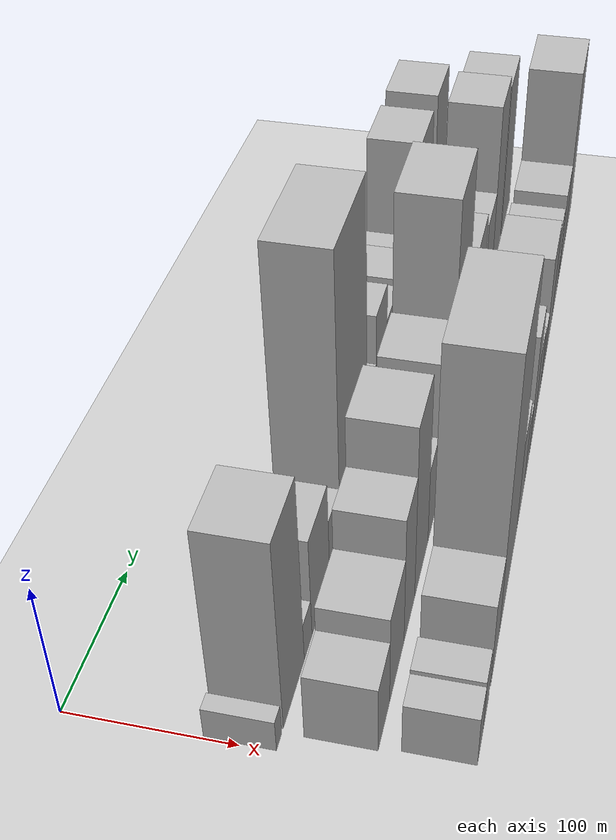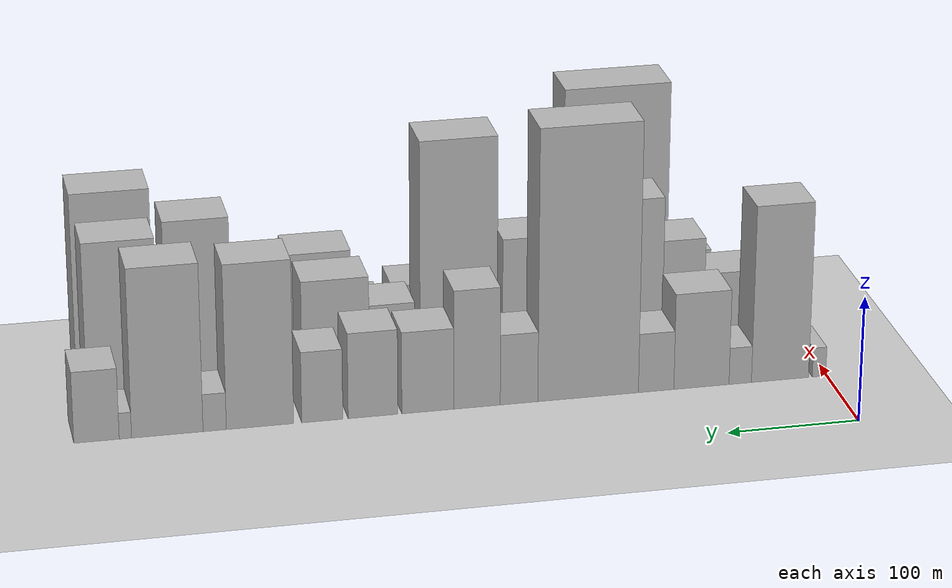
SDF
<sdf version="1.6">
 <world name="default">
  <include>
   <name>ground_plane_2</name>
   <uri>model://HANNAS_ground_plane</uri>
   <pose>100 0 0  0 0 0</pose>
  </include>
  <model name="building_16">
   <static>1</static>
   <pose>100.0000 6.3810 0 0.000000 0.000000 0.000000</pose>
   <link name="link">
    <pose>0 0 12.00 0 0 0</pose>
    <collision name="collision"><geometry><box><size>40.0000 10.6311 24.0000</size></box></geometry></collision>
    <visual name="visual">
     <cast_shadows>0</cast_shadows>
     <geometry><box><size>40.0000 10.6311 24.0000</size></box></geometry>
     <material>
      <script>
       <uri>model://HANNAS_wall/materials/scripts</uri>
       <uri>model://HANNAS_wall/materials/textures</uri>
       <name>vrc/HANNAS_wall</name>
      </script>
     </material>
    </visual>
   </link>
  </model>
  <model name="building_17">
   <static>1</static>
   <pose>100.0000 37.1451 0 0.000000 0.000000 0.000000</pose>
   <link name="link">
    <pose>0 0 72.00 0 0 0</pose>
    <collision name="collision"><geometry><box><size>40.0000 44.8969 144.0000</size></box></geometry></collision>
    <visual name="visual">
     <cast_shadows>0</cast_shadows>
     <geometry><box><size>40.0000 44.8969 144.0000</size></box></geometry>
     <material>
      <script>
       <uri>model://HANNAS_wall/materials/scripts</uri>
       <uri>model://HANNAS_wall/materials/textures</uri>
       <name>vrc/HANNAS_wall</name>
      </script>
     </material>
    </visual>
   </link>
  </model>
  <model name="building_18">
   <static>1</static>
   <pose>100.0000 68.3640 0 0.000000 0.000000 0.000000</pose>
   <link name="link">
    <pose>0 0 15.00 0 0 0</pose>
    <collision name="collision"><geometry><box><size>40.0000 17.5411 30.0000</size></box></geometry></collision>
    <visual name="visual">
     <cast_shadows>0</cast_shadows>
     <geometry><box><size>40.0000 17.5411 30.0000</size></box></geometry>
     <material>
      <script>
       <uri>model://HANNAS_wall/materials/scripts</uri>
       <uri>model://HANNAS_wall/materials/textures</uri>
       <name>vrc/HANNAS_wall</name>
      </script>
     </material>
    </visual>
   </link>
  </model>
  <model name="building_19">
   <static>1</static>
   <pose>100.0000 98.6439 0 0.000000 0.000000 0.000000</pose>
   <link name="link">
    <pose>0 0 39.00 0 0 0</pose>
    <collision name="collision"><geometry><box><size>40.0000 43.0187 78.0000</size></box></geometry></collision>
    <visual name="visual">
     <cast_shadows>0</cast_shadows>
     <geometry><box><size>40.0000 43.0187 78.0000</size></box></geometry>
     <material>
      <script>
       <uri>model://HANNAS_wall/materials/scripts</uri>
       <uri>model://HANNAS_wall/materials/textures</uri>
       <name>vrc/HANNAS_wall</name>
      </script>
     </material>
    </visual>
   </link>
  </model>
  <model name="building_20">
   <static>1</static>
   <pose>100.0000 133.8845 0 0.000000 0.000000 0.000000</pose>
   <link name="link">
    <pose>0 0 24.00 0 0 0</pose>
    <collision name="collision"><geometry><box><size>40.0000 27.4626 48.0000</size></box></geometry></collision>
    <visual name="visual">
     <cast_shadows>0</cast_shadows>
     <geometry><box><size>40.0000 27.4626 48.0000</size></box></geometry>
     <material>
      <script>
       <uri>model://HANNAS_wall/materials/scripts</uri>
       <uri>model://HANNAS_wall/materials/textures</uri>
       <name>vrc/HANNAS_wall</name>
      </script>
     </material>
    </visual>
   </link>
  </model>
  <model name="building_21">
   <static>1</static>
   <pose>100.0000 186.3772 0 0.000000 0.000000 0.000000</pose>
   <link name="link">
    <pose>0 0 109.50 0 0 0</pose>
    <collision name="collision"><geometry><box><size>40.0000 77.5228 219.0000</size></box></geometry></collision>
    <visual name="visual">
     <cast_shadows>0</cast_shadows>
     <geometry><box><size>40.0000 77.5228 219.0000</size></box></geometry>
     <material>
      <script>
       <uri>model://HANNAS_wall/materials/scripts</uri>
       <uri>model://HANNAS_wall/materials/textures</uri>
       <name>vrc/HANNAS_wall</name>
      </script>
     </material>
    </visual>
   </link>
  </model>
  <model name="building_22">
   <static>1</static>
   <pose>100.0000 239.5046 0 0.000000 0.000000 0.000000</pose>
   <link name="link">
    <pose>0 0 28.50 0 0 0</pose>
    <collision name="collision"><geometry><box><size>40.0000 28.7320 57.0000</size></box></geometry></collision>
    <visual name="visual">
     <cast_shadows>0</cast_shadows>
     <geometry><box><size>40.0000 28.7320 57.0000</size></box></geometry>
     <material>
      <script>
       <uri>model://HANNAS_wall/materials/scripts</uri>
       <uri>model://HANNAS_wall/materials/textures</uri>
       <name>vrc/HANNAS_wall</name>
      </script>
     </material>
    </visual>
   </link>
  </model>
  <model name="building_23">
   <static>1</static>
   <pose>100.0000 271.5599 0 0.000000 0.000000 0.000000</pose>
   <link name="link">
    <pose>0 0 48.00 0 0 0</pose>
    <collision name="collision"><geometry><box><size>40.0000 35.3786 96.0000</size></box></geometry></collision>
    <visual name="visual">
     <cast_shadows>0</cast_shadows>
     <geometry><box><size>40.0000 35.3786 96.0000</size></box></geometry>
     <material>
      <script>
       <uri>model://HANNAS_wall/materials/scripts</uri>
       <uri>model://HANNAS_wall/materials/textures</uri>
       <name>vrc/HANNAS_wall</name>
      </script>
     </material>
    </visual>
   </link>
  </model>
  <model name="building_24">
   <static>1</static>
   <pose>100.0000 308.8940 0 0.000000 0.000000 0.000000</pose>
   <link name="link">
    <pose>0 0 33.00 0 0 0</pose>
    <collision name="collision"><geometry><box><size>40.0000 39.2897 66.0000</size></box></geometry></collision>
    <visual name="visual">
     <cast_shadows>0</cast_shadows>
     <geometry><box><size>40.0000 39.2897 66.0000</size></box></geometry>
     <material>
      <script>
       <uri>model://HANNAS_wall/materials/scripts</uri>
       <uri>model://HANNAS_wall/materials/textures</uri>
       <name>vrc/HANNAS_wall</name>
      </script>
     </material>
    </visual>
   </link>
  </model>
  <model name="building_25">
   <static>1</static>
   <pose>100.0000 350.2658 0 0.000000 0.000000 0.000000</pose>
   <link name="link">
    <pose>0 0 34.50 0 0 0</pose>
    <collision name="collision"><geometry><box><size>40.0000 37.4539 69.0000</size></box></geometry></collision>
    <visual name="visual">
     <cast_shadows>0</cast_shadows>
     <geometry><box><size>40.0000 37.4539 69.0000</size></box></geometry>
     <material>
      <script>
       <uri>model://HANNAS_wall/materials/scripts</uri>
       <uri>model://HANNAS_wall/materials/textures</uri>
       <name>vrc/HANNAS_wall</name>
      </script>
     </material>
    </visual>
   </link>
  </model>
  <model name="building_26">
   <static>1</static>
   <pose>100.0000 388.3803 0 0.000000 0.000000 0.000000</pose>
   <link name="link">
    <pose>0 0 28.50 0 0 0</pose>
    <collision name="collision"><geometry><box><size>40.0000 30.7751 57.0000</size></box></geometry></collision>
    <visual name="visual">
     <cast_shadows>0</cast_shadows>
     <geometry><box><size>40.0000 30.7751 57.0000</size></box></geometry>
     <material>
      <script>
       <uri>model://HANNAS_wall/materials/scripts</uri>
       <uri>model://HANNAS_wall/materials/textures</uri>
       <name>vrc/HANNAS_wall</name>
      </script>
     </material>
    </visual>
   </link>
  </model>
  <model name="building_27">
   <static>1</static>
   <pose>100.0000 434.8495 0 0.000000 0.000000 0.000000</pose>
   <link name="link">
    <pose>0 0 66.00 0 0 0</pose>
    <collision name="collision"><geometry><box><size>40.0000 50.1632 132.0000</size></box></geometry></collision>
    <visual name="visual">
     <cast_shadows>0</cast_shadows>
     <geometry><box><size>40.0000 50.1632 132.0000</size></box></geometry>
     <material>
      <script>
       <uri>model://HANNAS_wall/materials/scripts</uri>
       <uri>model://HANNAS_wall/materials/textures</uri>
       <name>vrc/HANNAS_wall</name>
      </script>
     </material>
    </visual>
   </link>
  </model>
  <model name="building_28">
   <static>1</static>
   <pose>100.0000 468.5543 0 0.000000 0.000000 0.000000</pose>
   <link name="link">
    <pose>0 0 15.00 0 0 0</pose>
    <collision name="collision"><geometry><box><size>40.0000 17.2466 30.0000</size></box></geometry></collision>
    <visual name="visual">
     <cast_shadows>0</cast_shadows>
     <geometry><box><size>40.0000 17.2466 30.0000</size></box></geometry>
     <material>
      <script>
       <uri>model://HANNAS_wall/materials/scripts</uri>
       <uri>model://HANNAS_wall/materials/textures</uri>
       <name>vrc/HANNAS_wall</name>
      </script>
     </material>
    </visual>
   </link>
  </model>
  <model name="building_29">
   <static>1</static>
   <pose>100.0000 503.5258 0 0.000000 0.000000 0.000000</pose>
   <link name="link">
    <pose>0 0 67.50 0 0 0</pose>
    <collision name="collision"><geometry><box><size>40.0000 52.6964 135.0000</size></box></geometry></collision>
    <visual name="visual">
     <cast_shadows>0</cast_shadows>
     <geometry><box><size>40.0000 52.6964 135.0000</size></box></geometry>
     <material>
      <script>
       <uri>model://HANNAS_wall/materials/scripts</uri>
       <uri>model://HANNAS_wall/materials/textures</uri>
       <name>vrc/HANNAS_wall</name>
      </script>
     </material>
    </visual>
   </link>
  </model>
  <model name="building_30">
   <static>1</static>
   <pose>100.0000 534.3964 0 0.000000 0.000000 0.000000</pose>
   <link name="link">
    <pose>0 0 10.50 0 0 0</pose>
    <collision name="collision"><geometry><box><size>40.0000 9.0448 21.0000</size></box></geometry></collision>
    <visual name="visual">
     <cast_shadows>0</cast_shadows>
     <geometry><box><size>40.0000 9.0448 21.0000</size></box></geometry>
     <material>
      <script>
       <uri>model://HANNAS_wall/materials/scripts</uri>
       <uri>model://HANNAS_wall/materials/textures</uri>
       <name>vrc/HANNAS_wall</name>
      </script>
     </material>
    </visual>
   </link>
  </model>
  <model name="building_31">
   <static>1</static>
   <pose>100.0000 555.5444 0 0.000000 0.000000 0.000000</pose>
   <link name="link">
    <pose>0 0 28.50 0 0 0</pose>
    <collision name="collision"><geometry><box><size>40.0000 33.2512 57.0000</size></box></geometry></collision>
    <visual name="visual">
     <cast_shadows>0</cast_shadows>
     <geometry><box><size>40.0000 33.2512 57.0000</size></box></geometry>
     <material>
      <script>
       <uri>model://HANNAS_wall/materials/scripts</uri>
       <uri>model://HANNAS_wall/materials/textures</uri>
       <name>vrc/HANNAS_wall</name>
      </script>
     </material>
    </visual>
   </link>
  </model>
  <model name="building_46">
   <static>1</static>
   <pose>152.0000 27.1934 0 0.000000 0.000000 0.000000</pose>
   <link name="link">
    <pose>0 0 25.50 0 0 0</pose>
    <collision name="collision"><geometry><box><size>40.0000 30.2370 51.0000</size></box></geometry></collision>
    <visual name="visual">
     <cast_shadows>0</cast_shadows>
     <geometry><box><size>40.0000 30.2370 51.0000</size></box></geometry>
     <material>
      <script>
       <uri>model://HANNAS_wall/materials/scripts</uri>
       <uri>model://HANNAS_wall/materials/textures</uri>
       <name>vrc/HANNAS_wall</name>
      </script>
     </material>
    </visual>
   </link>
  </model>
  <model name="building_47">
   <static>1</static>
   <pose>152.0000 62.8523 0 0.000000 0.000000 0.000000</pose>
   <link name="link">
    <pose>0 0 34.50 0 0 0</pose>
    <collision name="collision"><geometry><box><size>40.0000 41.0806 69.0000</size></box></geometry></collision>
    <visual name="visual">
     <cast_shadows>0</cast_shadows>
     <geometry><box><size>40.0000 41.0806 69.0000</size></box></geometry>
     <material>
      <script>
       <uri>model://HANNAS_wall/materials/scripts</uri>
       <uri>model://HANNAS_wall/materials/textures</uri>
       <name>vrc/HANNAS_wall</name>
      </script>
     </material>
    </visual>
   </link>
  </model>
  <model name="building_48">
   <static>1</static>
   <pose>152.0000 99.8053 0 0.000000 0.000000 0.000000</pose>
   <link name="link">
    <pose>0 0 49.50 0 0 0</pose>
    <collision name="collision"><geometry><box><size>40.0000 32.8254 99.0000</size></box></geometry></collision>
    <visual name="visual">
     <cast_shadows>0</cast_shadows>
     <geometry><box><size>40.0000 32.8254 99.0000</size></box></geometry>
     <material>
      <script>
       <uri>model://HANNAS_wall/materials/scripts</uri>
       <uri>model://HANNAS_wall/materials/textures</uri>
       <name>vrc/HANNAS_wall</name>
      </script>
     </material>
    </visual>
   </link>
  </model>
  <model name="building_49">
   <static>1</static>
   <pose>152.0000 138.2980 0 0.000000 0.000000 0.000000</pose>
   <link name="link">
    <pose>0 0 67.50 0 0 0</pose>
    <collision name="collision"><geometry><box><size>40.0000 44.1601 135.0000</size></box></geometry></collision>
    <visual name="visual">
     <cast_shadows>0</cast_shadows>
     <geometry><box><size>40.0000 44.1601 135.0000</size></box></geometry>
     <material>
      <script>
       <uri>model://HANNAS_wall/materials/scripts</uri>
       <uri>model://HANNAS_wall/materials/textures</uri>
       <name>vrc/HANNAS_wall</name>
      </script>
     </material>
    </visual>
   </link>
  </model>
  <model name="building_50">
   <static>1</static>
   <pose>152.0000 175.4319 0 0.000000 0.000000 0.000000</pose>
   <link name="link">
    <pose>0 0 30.00 0 0 0</pose>
    <collision name="collision"><geometry><box><size>40.0000 30.1077 60.0000</size></box></geometry></collision>
    <visual name="visual">
     <cast_shadows>0</cast_shadows>
     <geometry><box><size>40.0000 30.1077 60.0000</size></box></geometry>
     <material>
      <script>
       <uri>model://HANNAS_wall/materials/scripts</uri>
       <uri>model://HANNAS_wall/materials/textures</uri>
       <name>vrc/HANNAS_wall</name>
      </script>
     </material>
    </visual>
   </link>
  </model>
  <model name="building_51">
   <static>1</static>
   <pose>152.0000 219.2531 0 0.000000 0.000000 0.000000</pose>
   <link name="link">
    <pose>0 0 55.50 0 0 0</pose>
    <collision name="collision"><geometry><box><size>40.0000 43.5346 111.0000</size></box></geometry></collision>
    <visual name="visual">
     <cast_shadows>0</cast_shadows>
     <geometry><box><size>40.0000 43.5346 111.0000</size></box></geometry>
     <material>
      <script>
       <uri>model://HANNAS_wall/materials/scripts</uri>
       <uri>model://HANNAS_wall/materials/textures</uri>
       <name>vrc/HANNAS_wall</name>
      </script>
     </material>
    </visual>
   </link>
  </model>
  <model name="building_52">
   <static>1</static>
   <pose>152.0000 274.7433 0 0.000000 0.000000 0.000000</pose>
   <link name="link">
    <pose>0 0 97.50 0 0 0</pose>
    <collision name="collision"><geometry><box><size>40.0000 59.4459 195.0000</size></box></geometry></collision>
    <visual name="visual">
     <cast_shadows>0</cast_shadows>
     <geometry><box><size>40.0000 59.4459 195.0000</size></box></geometry>
     <material>
      <script>
       <uri>model://HANNAS_wall/materials/scripts</uri>
       <uri>model://HANNAS_wall/materials/textures</uri>
       <name>vrc/HANNAS_wall</name>
      </script>
     </material>
    </visual>
   </link>
  </model>
  <model name="building_53">
   <static>1</static>
   <pose>152.0000 325.9357 0 0.000000 0.000000 0.000000</pose>
   <link name="link">
    <pose>0 0 33.00 0 0 0</pose>
    <collision name="collision"><geometry><box><size>40.0000 34.9389 66.0000</size></box></geometry></collision>
    <visual name="visual">
     <cast_shadows>0</cast_shadows>
     <geometry><box><size>40.0000 34.9389 66.0000</size></box></geometry>
     <material>
      <script>
       <uri>model://HANNAS_wall/materials/scripts</uri>
       <uri>model://HANNAS_wall/materials/textures</uri>
       <name>vrc/HANNAS_wall</name>
      </script>
     </material>
    </visual>
   </link>
  </model>
  <model name="building_54">
   <static>1</static>
   <pose>152.0000 369.0402 0 0.000000 0.000000 0.000000</pose>
   <link name="link">
    <pose>0 0 45.00 0 0 0</pose>
    <collision name="collision"><geometry><box><size>40.0000 51.2701 90.0000</size></box></geometry></collision>
    <visual name="visual">
     <cast_shadows>0</cast_shadows>
     <geometry><box><size>40.0000 51.2701 90.0000</size></box></geometry>
     <material>
      <script>
       <uri>model://HANNAS_wall/materials/scripts</uri>
       <uri>model://HANNAS_wall/materials/textures</uri>
       <name>vrc/HANNAS_wall</name>
      </script>
     </material>
    </visual>
   </link>
  </model>
  <model name="building_55">
   <static>1</static>
   <pose>152.0000 399.0772 0 0.000000 0.000000 0.000000</pose>
   <link name="link">
    <pose>0 0 10.50 0 0 0</pose>
    <collision name="collision"><geometry><box><size>40.0000 8.8040 21.0000</size></box></geometry></collision>
    <visual name="visual">
     <cast_shadows>0</cast_shadows>
     <geometry><box><size>40.0000 8.8040 21.0000</size></box></geometry>
     <material>
      <script>
       <uri>model://HANNAS_wall/materials/scripts</uri>
       <uri>model://HANNAS_wall/materials/textures</uri>
       <name>vrc/HANNAS_wall</name>
      </script>
     </material>
    </visual>
   </link>
  </model>
  <model name="building_56">
   <static>1</static>
   <pose>152.0000 425.3947 0 0.000000 0.000000 0.000000</pose>
   <link name="link">
    <pose>0 0 37.50 0 0 0</pose>
    <collision name="collision"><geometry><box><size>40.0000 43.8309 75.0000</size></box></geometry></collision>
    <visual name="visual">
     <cast_shadows>0</cast_shadows>
     <geometry><box><size>40.0000 43.8309 75.0000</size></box></geometry>
     <material>
      <script>
       <uri>model://HANNAS_wall/materials/scripts</uri>
       <uri>model://HANNAS_wall/materials/textures</uri>
       <name>vrc/HANNAS_wall</name>
      </script>
     </material>
    </visual>
   </link>
  </model>
  <model name="building_57">
   <static>1</static>
   <pose>152.0000 471.9202 0 0.000000 0.000000 0.000000</pose>
   <link name="link">
    <pose>0 0 73.50 0 0 0</pose>
    <collision name="collision"><geometry><box><size>40.0000 49.2201 147.0000</size></box></geometry></collision>
    <visual name="visual">
     <cast_shadows>0</cast_shadows>
     <geometry><box><size>40.0000 49.2201 147.0000</size></box></geometry>
     <material>
      <script>
       <uri>model://HANNAS_wall/materials/scripts</uri>
       <uri>model://HANNAS_wall/materials/textures</uri>
       <name>vrc/HANNAS_wall</name>
      </script>
     </material>
    </visual>
   </link>
  </model>
  <model name="building_58">
   <static>1</static>
   <pose>152.0000 529.4908 0 0.000000 0.000000 0.000000</pose>
   <link name="link">
    <pose>0 0 67.50 0 0 0</pose>
    <collision name="collision"><geometry><box><size>40.0000 53.9211 135.0000</size></box></geometry></collision>
    <visual name="visual">
     <cast_shadows>0</cast_shadows>
     <geometry><box><size>40.0000 53.9211 135.0000</size></box></geometry>
     <material>
      <script>
       <uri>model://HANNAS_wall/materials/scripts</uri>
       <uri>model://HANNAS_wall/materials/textures</uri>
       <name>vrc/HANNAS_wall</name>
      </script>
     </material>
    </visual>
   </link>
  </model>
  <model name="building_74">
   <static>1</static>
   <pose>204.0000 24.5260 0 0.000000 0.000000 0.000000</pose>
   <link name="link">
    <pose>0 0 19.50 0 0 0</pose>
    <collision name="collision"><geometry><box><size>40.0000 20.3262 39.0000</size></box></geometry></collision>
    <visual name="visual">
     <cast_shadows>0</cast_shadows>
     <geometry><box><size>40.0000 20.3262 39.0000</size></box></geometry>
     <material>
      <script>
       <uri>model://HANNAS_wall/materials/scripts</uri>
       <uri>model://HANNAS_wall/materials/textures</uri>
       <name>vrc/HANNAS_wall</name>
      </script>
     </material>
    </visual>
   </link>
  </model>
  <model name="building_75">
   <static>1</static>
   <pose>204.0000 45.5506 0 0.000000 0.000000 0.000000</pose>
   <link name="link">
    <pose>0 0 21.00 0 0 0</pose>
    <collision name="collision"><geometry><box><size>40.0000 21.7231 42.0000</size></box></geometry></collision>
    <visual name="visual">
     <cast_shadows>0</cast_shadows>
     <geometry><box><size>40.0000 21.7231 42.0000</size></box></geometry>
     <material>
      <script>
       <uri>model://HANNAS_wall/materials/scripts</uri>
       <uri>model://HANNAS_wall/materials/textures</uri>
       <name>vrc/HANNAS_wall</name>
      </script>
     </material>
    </visual>
   </link>
  </model>
  <model name="building_76">
   <static>1</static>
   <pose>204.0000 81.9971 0 0.000000 0.000000 0.000000</pose>
   <link name="link">
    <pose>0 0 33.00 0 0 0</pose>
    <collision name="collision"><geometry><box><size>40.0000 35.1700 66.0000</size></box></geometry></collision>
    <visual name="visual">
     <cast_shadows>0</cast_shadows>
     <geometry><box><size>40.0000 35.1700 66.0000</size></box></geometry>
     <material>
      <script>
       <uri>model://HANNAS_wall/materials/scripts</uri>
       <uri>model://HANNAS_wall/materials/textures</uri>
       <name>vrc/HANNAS_wall</name>
      </script>
     </material>
    </visual>
   </link>
  </model>
  <model name="building_77">
   <static>1</static>
   <pose>204.0000 140.8758 0 0.000000 0.000000 0.000000</pose>
   <link name="link">
    <pose>0 0 103.50 0 0 0</pose>
    <collision name="collision"><geometry><box><size>40.0000 82.5873 207.0000</size></box></geometry></collision>
    <visual name="visual">
     <cast_shadows>0</cast_shadows>
     <geometry><box><size>40.0000 82.5873 207.0000</size></box></geometry>
     <material>
      <script>
       <uri>model://HANNAS_wall/materials/scripts</uri>
       <uri>model://HANNAS_wall/materials/textures</uri>
       <name>vrc/HANNAS_wall</name>
      </script>
     </material>
    </visual>
   </link>
  </model>
  <model name="building_78">
   <static>1</static>
   <pose>204.0000 202.5183 0 0.000000 0.000000 0.000000</pose>
   <link name="link">
    <pose>0 0 36.00 0 0 0</pose>
    <collision name="collision"><geometry><box><size>40.0000 40.6977 72.0000</size></box></geometry></collision>
    <visual name="visual">
     <cast_shadows>0</cast_shadows>
     <geometry><box><size>40.0000 40.6977 72.0000</size></box></geometry>
     <material>
      <script>
       <uri>model://HANNAS_wall/materials/scripts</uri>
       <uri>model://HANNAS_wall/materials/textures</uri>
       <name>vrc/HANNAS_wall</name>
      </script>
     </material>
    </visual>
   </link>
  </model>
  <model name="building_79">
   <static>1</static>
   <pose>204.0000 235.0335 0 0.000000 0.000000 0.000000</pose>
   <link name="link">
    <pose>0 0 24.00 0 0 0</pose>
    <collision name="collision"><geometry><box><size>40.0000 24.3327 48.0000</size></box></geometry></collision>
    <visual name="visual">
     <cast_shadows>0</cast_shadows>
     <geometry><box><size>40.0000 24.3327 48.0000</size></box></geometry>
     <material>
      <script>
       <uri>model://HANNAS_wall/materials/scripts</uri>
       <uri>model://HANNAS_wall/materials/textures</uri>
       <name>vrc/HANNAS_wall</name>
      </script>
     </material>
    </visual>
   </link>
  </model>
  <model name="building_80">
   <static>1</static>
   <pose>204.0000 266.8015 0 0.000000 0.000000 0.000000</pose>
   <link name="link">
    <pose>0 0 49.50 0 0 0</pose>
    <collision name="collision"><geometry><box><size>40.0000 33.2032 99.0000</size></box></geometry></collision>
    <visual name="visual">
     <cast_shadows>0</cast_shadows>
     <geometry><box><size>40.0000 33.2032 99.0000</size></box></geometry>
     <material>
      <script>
       <uri>model://HANNAS_wall/materials/scripts</uri>
       <uri>model://HANNAS_wall/materials/textures</uri>
       <name>vrc/HANNAS_wall</name>
      </script>
     </material>
    </visual>
   </link>
  </model>
  <model name="building_81">
   <static>1</static>
   <pose>204.0000 299.8054 0 0.000000 0.000000 0.000000</pose>
   <link name="link">
    <pose>0 0 28.50 0 0 0</pose>
    <collision name="collision"><geometry><box><size>40.0000 32.8047 57.0000</size></box></geometry></collision>
    <visual name="visual">
     <cast_shadows>0</cast_shadows>
     <geometry><box><size>40.0000 32.8047 57.0000</size></box></geometry>
     <material>
      <script>
       <uri>model://HANNAS_wall/materials/scripts</uri>
       <uri>model://HANNAS_wall/materials/textures</uri>
       <name>vrc/HANNAS_wall</name>
      </script>
     </material>
    </visual>
   </link>
  </model>
  <model name="building_82">
   <static>1</static>
   <pose>204.0000 319.8822 0 0.000000 0.000000 0.000000</pose>
   <link name="link">
    <pose>0 0 7.50 0 0 0</pose>
    <collision name="collision"><geometry><box><size>40.0000 7.3487 15.0000</size></box></geometry></collision>
    <visual name="visual">
     <cast_shadows>0</cast_shadows>
     <geometry><box><size>40.0000 7.3487 15.0000</size></box></geometry>
     <material>
      <script>
       <uri>model://HANNAS_wall/materials/scripts</uri>
       <uri>model://HANNAS_wall/materials/textures</uri>
       <name>vrc/HANNAS_wall</name>
      </script>
     </material>
    </visual>
   </link>
  </model>
  <model name="building_83">
   <static>1</static>
   <pose>204.0000 335.6745 0 0.000000 0.000000 0.000000</pose>
   <link name="link">
    <pose>0 0 22.50 0 0 0</pose>
    <collision name="collision"><geometry><box><size>40.0000 24.2359 45.0000</size></box></geometry></collision>
    <visual name="visual">
     <cast_shadows>0</cast_shadows>
     <geometry><box><size>40.0000 24.2359 45.0000</size></box></geometry>
     <material>
      <script>
       <uri>model://HANNAS_wall/materials/scripts</uri>
       <uri>model://HANNAS_wall/materials/textures</uri>
       <name>vrc/HANNAS_wall</name>
      </script>
     </material>
    </visual>
   </link>
  </model>
  <model name="building_84">
   <static>1</static>
   <pose>204.0000 372.5061 0 0.000000 0.000000 0.000000</pose>
   <link name="link">
    <pose>0 0 45.00 0 0 0</pose>
    <collision name="collision"><geometry><box><size>40.0000 49.4272 90.0000</size></box></geometry></collision>
    <visual name="visual">
     <cast_shadows>0</cast_shadows>
     <geometry><box><size>40.0000 49.4272 90.0000</size></box></geometry>
     <material>
      <script>
       <uri>model://HANNAS_wall/materials/scripts</uri>
       <uri>model://HANNAS_wall/materials/textures</uri>
       <name>vrc/HANNAS_wall</name>
      </script>
     </material>
    </visual>
   </link>
  </model>
  <model name="building_85">
   <static>1</static>
   <pose>204.0000 416.9364 0 0.000000 0.000000 0.000000</pose>
   <link name="link">
    <pose>0 0 37.50 0 0 0</pose>
    <collision name="collision"><geometry><box><size>40.0000 39.4335 75.0000</size></box></geometry></collision>
    <visual name="visual">
     <cast_shadows>0</cast_shadows>
     <geometry><box><size>40.0000 39.4335 75.0000</size></box></geometry>
     <material>
      <script>
       <uri>model://HANNAS_wall/materials/scripts</uri>
       <uri>model://HANNAS_wall/materials/textures</uri>
       <name>vrc/HANNAS_wall</name>
      </script>
     </material>
    </visual>
   </link>
  </model>
  <model name="building_86">
   <static>1</static>
   <pose>204.0000 443.0078 0 0.000000 0.000000 0.000000</pose>
   <link name="link">
    <pose>0 0 13.50 0 0 0</pose>
    <collision name="collision"><geometry><box><size>40.0000 12.7093 27.0000</size></box></geometry></collision>
    <visual name="visual">
     <cast_shadows>0</cast_shadows>
     <geometry><box><size>40.0000 12.7093 27.0000</size></box></geometry>
     <material>
      <script>
       <uri>model://HANNAS_wall/materials/scripts</uri>
       <uri>model://HANNAS_wall/materials/textures</uri>
       <name>vrc/HANNAS_wall</name>
      </script>
     </material>
    </visual>
   </link>
  </model>
  <model name="building_87">
   <static>1</static>
   <pose>204.0000 476.7939 0 0.000000 0.000000 0.000000</pose>
   <link name="link">
    <pose>0 0 37.50 0 0 0</pose>
    <collision name="collision"><geometry><box><size>40.0000 44.8628 75.0000</size></box></geometry></collision>
    <visual name="visual">
     <cast_shadows>0</cast_shadows>
     <geometry><box><size>40.0000 44.8628 75.0000</size></box></geometry>
     <material>
      <script>
       <uri>model://HANNAS_wall/materials/scripts</uri>
       <uri>model://HANNAS_wall/materials/textures</uri>
       <name>vrc/HANNAS_wall</name>
      </script>
     </material>
    </visual>
   </link>
  </model>
  <model name="building_88">
   <static>1</static>
   <pose>204.0000 529.1912 0 0.000000 0.000000 0.000000</pose>
   <link name="link">
    <pose>0 0 76.50 0 0 0</pose>
    <collision name="collision"><geometry><box><size>40.0000 59.9318 153.0000</size></box></geometry></collision>
    <visual name="visual">
     <cast_shadows>0</cast_shadows>
     <geometry><box><size>40.0000 59.9318 153.0000</size></box></geometry>
     <material>
      <script>
       <uri>model://HANNAS_wall/materials/scripts</uri>
       <uri>model://HANNAS_wall/materials/textures</uri>
       <name>vrc/HANNAS_wall</name>
      </script>
     </material>
    </visual>
   </link>
  </model>
 </world>
</sdf>
